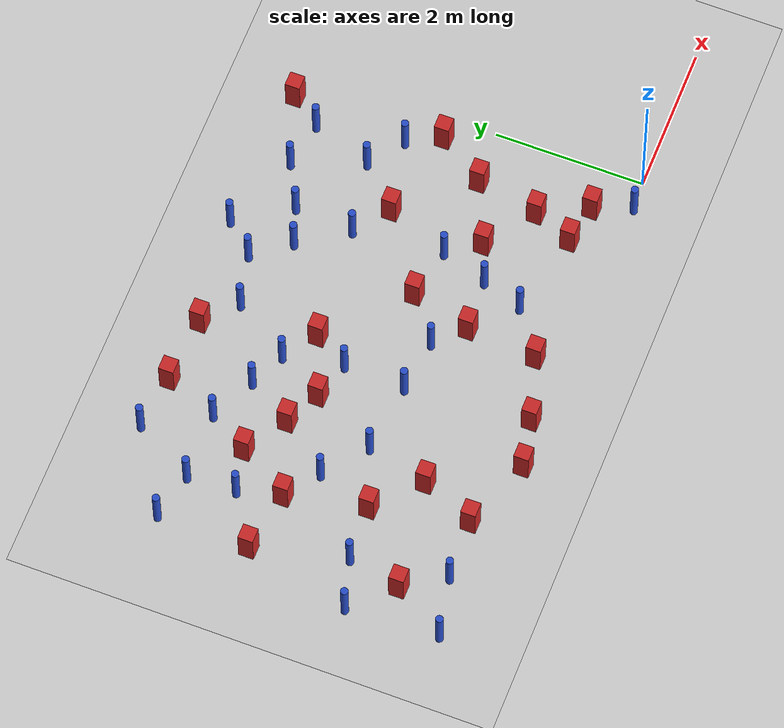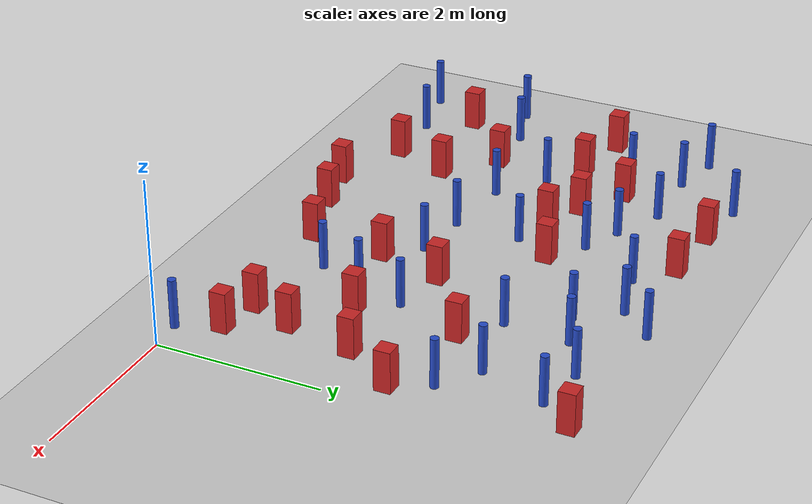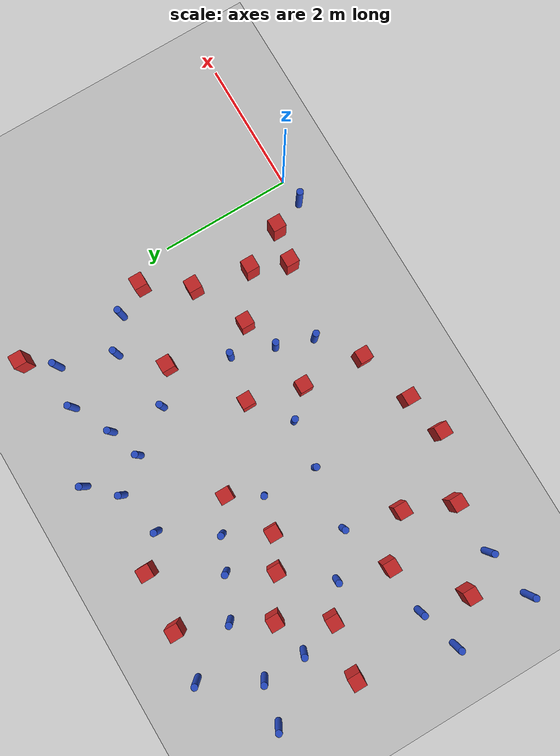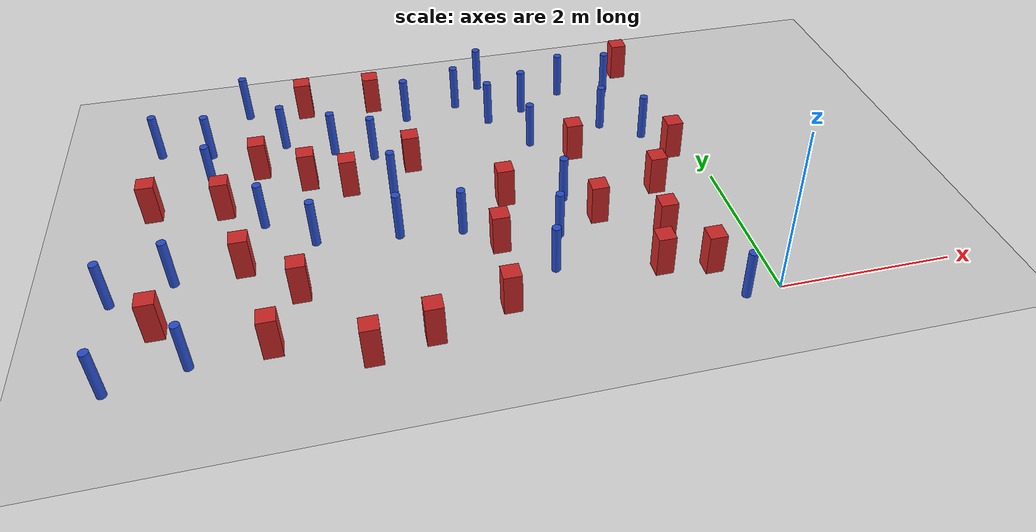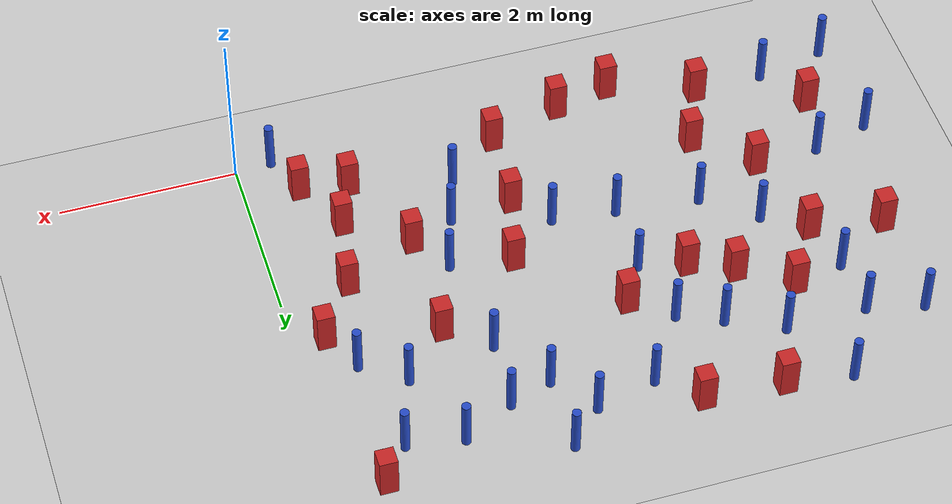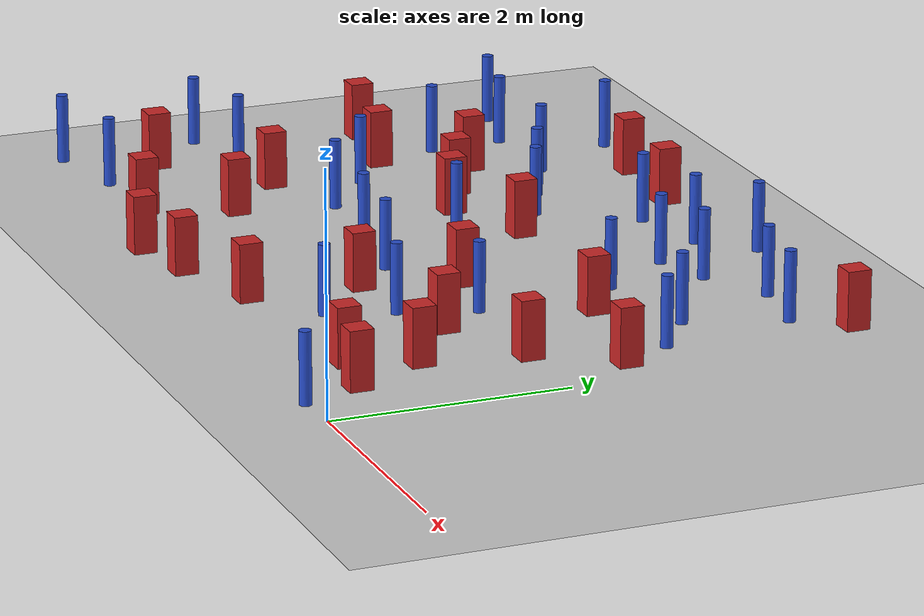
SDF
<sdf version="1.6">
 <world name="default">
  <model name="ground_plane">
   <static>1</static>
   <link name="link">
    <collision name="collision">
     <geometry><plane><normal>0 0 1</normal><size>100 100</size></plane></geometry>
     <surface><friction><ode><mu>100</mu><mu2>50</mu2></ode></friction></surface>
    </collision>
    <visual name="visual">
     <cast_shadows>0</cast_shadows>
     <geometry><plane><normal>0 0 1</normal><size>100 100</size></plane></geometry>
     <material>
      <ambient>1.0 1.0 1.0 1.0</ambient>
      <diffuse>0.8 0.8 0.8 1.0</diffuse>
      <specular>0.01 0.01 0.01 1.000000</specular>
     </material>
    </visual>
   </link>
  </model>
  <model name="square_post_obstacle0">
   <static>true</static>
   <pose>-3.55596763186 3.06718040949 1.91545236811e-07 -7.35059704564e-06 1.12565212e-07 2.39332434364e-05</pose>
   <link name="link">
    <pose>0 0 0.25 0 -0 0</pose>
    <inertial>
     <mass>100</mass>
     <inertia>
      <ixx>0.166667</ixx>
      <ixy>0</ixy>
      <ixz>0</ixz>
      <iyy>0.166667</iyy>
      <iyz>0</iyz>
      <izz>0.166667</izz>
     </inertia>
    </inertial>
    <collision name="collision"><geometry><box><size>.2 .2 .5</size></box></geometry></collision>
    <visual name="visual">
     <geometry><box><size>.2 .2 .5</size></box></geometry>
     <material>
      <script><name>Gazebo/Red</name><uri>file://media/materials/scripts/gazebo.material</uri></script>
     </material>
    </visual>
   </link>
  </model>
  <model name="pole_obstacle5">
   <static>true</static>
   <pose>-2.81162982472 4.31498104708 7.38925637345e-09 -8.47170692798e-08 1.24976765033e-08 -1.74513093019e-07</pose>
   <link name="link">
    <pose>0 0 0.3 0 -0 0</pose>
    <inertial>
     <mass>1</mass>
     <inertia><ixx>0.145833</ixx><ixy>0</ixy><ixz>0</ixz><iyy>0.145833</iyy><iyz>0</iyz><izz>0.125</izz></inertia>
    </inertial>
    <collision name="collision">
     <geometry><cylinder><radius>0.05</radius><length>.6</length></cylinder></geometry>
    </collision>
    <visual name="visual">
     <geometry><cylinder><radius>0.05</radius><length>.6</length></cylinder></geometry>
     <material>
      <script><name>Gazebo/Blue</name><uri>file://media/materials/scripts/gazebo.material</uri></script>
     </material>
    </visual>
   </link>
  </model>
  <model name="square_post_obstacle12">
   <static>true</static>
   <pose>-3.90689282888 4.53653102175 1.91545236811e-07 -7.35059704564e-06 1.12565212e-07 2.39332434364e-05</pose>
   <link name="link">
    <pose>0 0 0.25 0 -0 0</pose>
    <inertial>
     <mass>100</mass>
     <inertia>
      <ixx>0.166667</ixx>
      <ixy>0</ixy>
      <ixz>0</ixz>
      <iyy>0.166667</iyy>
      <iyz>0</iyz>
      <izz>0.166667</izz>
     </inertia>
    </inertial>
    <collision name="collision"><geometry><box><size>.2 .2 .5</size></box></geometry></collision>
    <visual name="visual">
     <geometry><box><size>.2 .2 .5</size></box></geometry>
     <material>
      <script><name>Gazebo/Red</name><uri>file://media/materials/scripts/gazebo.material</uri></script>
     </material>
    </visual>
   </link>
  </model>
  <model name="square_post_obstacle18">
   <static>true</static>
   <pose>-0.758517951045 1.95636640092 1.91545236811e-07 -7.35059704564e-06 1.12565212e-07 2.39332434364e-05</pose>
   <link name="link">
    <pose>0 0 0.25 0 -0 0</pose>
    <inertial>
     <mass>100</mass>
     <inertia>
      <ixx>0.166667</ixx>
      <ixy>0</ixy>
      <ixz>0</ixz>
      <iyy>0.166667</iyy>
      <iyz>0</iyz>
      <izz>0.166667</izz>
     </inertia>
    </inertial>
    <collision name="collision"><geometry><box><size>.2 .2 .5</size></box></geometry></collision>
    <visual name="visual">
     <geometry><box><size>.2 .2 .5</size></box></geometry>
     <material>
      <script><name>Gazebo/Red</name><uri>file://media/materials/scripts/gazebo.material</uri></script>
     </material>
    </visual>
   </link>
  </model>
  <model name="pole_obstacle11">
   <static>true</static>
   <pose>-5.07678339914 3.88739832947 7.38925637345e-09 -8.47170692798e-08 1.24976764937e-08 -1.74513093023e-07</pose>
   <link name="link">
    <pose>0 0 0.3 0 -0 0</pose>
    <inertial>
     <mass>1</mass>
     <inertia><ixx>0.145833</ixx><ixy>0</ixy><ixz>0</ixz><iyy>0.145833</iyy><iyz>0</iyz><izz>0.125</izz></inertia>
    </inertial>
    <collision name="collision">
     <geometry><cylinder><radius>0.05</radius><length>.6</length></cylinder></geometry>
    </collision>
    <visual name="visual">
     <geometry><cylinder><radius>0.05</radius><length>.6</length></cylinder></geometry>
     <material>
      <script><name>Gazebo/Blue</name><uri>file://media/materials/scripts/gazebo.material</uri></script>
     </material>
    </visual>
   </link>
  </model>
  <model name="square_post_obstacle22">
   <static>true</static>
   <pose>-6.60821989965 2.79242806834 1.91545236811e-07 -7.35059704564e-06 1.12565212e-07 2.39332434364e-05</pose>
   <link name="link">
    <pose>0 0 0.25 0 -0 0</pose>
    <inertial>
     <mass>100</mass>
     <inertia>
      <ixx>0.166667</ixx>
      <ixy>0</ixy>
      <ixz>0</ixz>
      <iyy>0.166667</iyy>
      <iyz>0</iyz>
      <izz>0.166667</izz>
     </inertia>
    </inertial>
    <collision name="collision"><geometry><box><size>.2 .2 .5</size></box></geometry></collision>
    <visual name="visual">
     <geometry><box><size>.2 .2 .5</size></box></geometry>
     <material>
      <script><name>Gazebo/Red</name><uri>file://media/materials/scripts/gazebo.material</uri></script>
     </material>
    </visual>
   </link>
  </model>
  <model name="square_post_obstacle23">
   <static>true</static>
   <pose>-4.34009760006 2.75587607448 1.91545236811e-07 -7.35059704564e-06 1.12565212e-07 2.39332434364e-05</pose>
   <link name="link">
    <pose>0 0 0.25 0 -0 0</pose>
    <inertial>
     <mass>100</mass>
     <inertia>
      <ixx>0.166667</ixx>
      <ixy>0</ixy>
      <ixz>0</ixz>
      <iyy>0.166667</iyy>
      <iyz>0</iyz>
      <izz>0.166667</izz>
     </inertia>
    </inertial>
    <collision name="collision"><geometry><box><size>.2 .2 .5</size></box></geometry></collision>
    <visual name="visual">
     <geometry><box><size>.2 .2 .5</size></box></geometry>
     <material>
      <script><name>Gazebo/Red</name><uri>file://media/materials/scripts/gazebo.material</uri></script>
     </material>
    </visual>
   </link>
  </model>
  <model name="pole_obstacle18">
   <static>true</static>
   <pose>-4.47492820045 3.59620624699 7.38925637345e-09 -8.47170692798e-08 1.24976764937e-08 -1.74513093023e-07</pose>
   <link name="link">
    <pose>0 0 0.3 0 -0 0</pose>
    <inertial>
     <mass>1</mass>
     <inertia><ixx>0.145833</ixx><ixy>0</ixy><ixz>0</ixz><iyy>0.145833</iyy><iyz>0</iyz><izz>0.125</izz></inertia>
    </inertial>
    <collision name="collision">
     <geometry><cylinder><radius>0.05</radius><length>.6</length></cylinder></geometry>
    </collision>
    <visual name="visual">
     <geometry><cylinder><radius>0.05</radius><length>.6</length></cylinder></geometry>
     <material>
      <script><name>Gazebo/Blue</name><uri>file://media/materials/scripts/gazebo.material</uri></script>
     </material>
    </visual>
   </link>
  </model>
  <model name="square_post_obstacle29">
   <static>true</static>
   <pose>-6.44427850172 0.853628667313 1.91545236811e-07 -7.35059704564e-06 1.12565212e-07 2.39332434364e-05</pose>
   <link name="link">
    <pose>0 0 0.25 0 -0 0</pose>
    <inertial>
     <mass>100</mass>
     <inertia>
      <ixx>0.166667</ixx>
      <ixy>0</ixy>
      <ixz>0</ixz>
      <iyy>0.166667</iyy>
      <iyz>0</iyz>
      <izz>0.166667</izz>
     </inertia>
    </inertial>
    <collision name="collision"><geometry><box><size>.2 .2 .5</size></box></geometry></collision>
    <visual name="visual">
     <geometry><box><size>.2 .2 .5</size></box></geometry>
     <material>
      <script><name>Gazebo/Red</name><uri>file://media/materials/scripts/gazebo.material</uri></script>
     </material>
    </visual>
   </link>
  </model>
  <model name="square_post_obstacle46">
   <static>true</static>
   <pose>-5.28800763134 0.344674711629 1.91545236811e-07 -7.35059704564e-06 1.12565212e-07 2.39332434364e-05</pose>
   <link name="link">
    <pose>0 0 0.25 0 -0 0</pose>
    <inertial>
     <mass>100</mass>
     <inertia>
      <ixx>0.166667</ixx>
      <ixy>0</ixy>
      <ixz>0</ixz>
      <iyy>0.166667</iyy>
      <iyz>0</iyz>
      <izz>0.166667</izz>
     </inertia>
    </inertial>
    <collision name="collision"><geometry><box><size>.2 .2 .5</size></box></geometry></collision>
    <visual name="visual">
     <geometry><box><size>.2 .2 .5</size></box></geometry>
     <material>
      <script><name>Gazebo/Red</name><uri>file://media/materials/scripts/gazebo.material</uri></script>
     </material>
    </visual>
   </link>
  </model>
  <model name="pole_obstacle47">
   <static>true</static>
   <pose>-3.15005082877 1.69708760425 7.38925637345e-09 -8.471706928e-08 1.24976765152e-08 -1.74513093012e-07</pose>
   <link name="link">
    <pose>0 0 0.3 0 -0 0</pose>
    <inertial>
     <mass>1</mass>
     <inertia><ixx>0.145833</ixx><ixy>0</ixy><ixz>0</ixz><iyy>0.145833</iyy><iyz>0</iyz><izz>0.125</izz></inertia>
    </inertial>
    <collision name="collision">
     <geometry><cylinder><radius>0.05</radius><length>.6</length></cylinder></geometry>
    </collision>
    <visual name="visual">
     <geometry><cylinder><radius>0.05</radius><length>.6</length></cylinder></geometry>
     <material>
      <script><name>Gazebo/Blue</name><uri>file://media/materials/scripts/gazebo.material</uri></script>
     </material>
    </visual>
   </link>
  </model>
  <model name="pole_obstacle48">
   <static>true</static>
   <pose>-5.95341999926 3.22461504362 7.38925637345e-09 -8.47170692798e-08 1.24976764937e-08 -1.74513093023e-07</pose>
   <link name="link">
    <pose>0 0 0.3 0 -0 0</pose>
    <inertial>
     <mass>1</mass>
     <inertia><ixx>0.145833</ixx><ixy>0</ixy><ixz>0</ixz><iyy>0.145833</iyy><iyz>0</iyz><izz>0.125</izz></inertia>
    </inertial>
    <collision name="collision">
     <geometry><cylinder><radius>0.05</radius><length>.6</length></cylinder></geometry>
    </collision>
    <visual name="visual">
     <geometry><cylinder><radius>0.05</radius><length>.6</length></cylinder></geometry>
     <material>
      <script><name>Gazebo/Blue</name><uri>file://media/materials/scripts/gazebo.material</uri></script>
     </material>
    </visual>
   </link>
  </model>
  <model name="square_post_obstacle49">
   <static>true</static>
   <pose>-2.56799728184 2.14186176935 1.91545236811e-07 -7.35059704564e-06 1.12565212e-07 2.39332434364e-05</pose>
   <link name="link">
    <pose>0 0 0.25 0 -0 0</pose>
    <inertial>
     <mass>100</mass>
     <inertia>
      <ixx>0.166667</ixx>
      <ixy>0</ixy>
      <ixz>0</ixz>
      <iyy>0.166667</iyy>
      <iyz>0</iyz>
      <izz>0.166667</izz>
     </inertia>
    </inertial>
    <collision name="collision"><geometry><box><size>.2 .2 .5</size></box></geometry></collision>
    <visual name="visual">
     <geometry><box><size>.2 .2 .5</size></box></geometry>
     <material>
      <script><name>Gazebo/Red</name><uri>file://media/materials/scripts/gazebo.material</uri></script>
     </material>
    </visual>
   </link>
  </model>
  <model name="square_post_obstacle50">
   <static>true</static>
   <pose>-0.925901532335 1.11366459113 1.91545236811e-07 -7.35059704564e-06 1.12565212e-07 2.39332434364e-05</pose>
   <link name="link">
    <pose>0 0 0.25 0 -0 0</pose>
    <inertial>
     <mass>100</mass>
     <inertia>
      <ixx>0.166667</ixx>
      <ixy>0</ixy>
      <ixz>0</ixz>
      <iyy>0.166667</iyy>
      <iyz>0</iyz>
      <izz>0.166667</izz>
     </inertia>
    </inertial>
    <collision name="collision"><geometry><box><size>.2 .2 .5</size></box></geometry></collision>
    <visual name="visual">
     <geometry><box><size>.2 .2 .5</size></box></geometry>
     <material>
      <script><name>Gazebo/Red</name><uri>file://media/materials/scripts/gazebo.material</uri></script>
     </material>
    </visual>
   </link>
  </model>
  <model name="pole_obstacle60">
   <static>true</static>
   <pose>-5.35524571533 2.32616071133 7.38925637345e-09 -8.47170692798e-08 1.24976764937e-08 -1.74513093023e-07</pose>
   <link name="link">
    <pose>0 0 0.3 0 -0 0</pose>
    <inertial>
     <mass>1</mass>
     <inertia><ixx>0.145833</ixx><ixy>0</ixy><ixz>0</ixz><iyy>0.145833</iyy><iyz>0</iyz><izz>0.125</izz></inertia>
    </inertial>
    <collision name="collision">
     <geometry><cylinder><radius>0.05</radius><length>.6</length></cylinder></geometry>
    </collision>
    <visual name="visual">
     <geometry><cylinder><radius>0.05</radius><length>.6</length></cylinder></geometry>
     <material>
      <script><name>Gazebo/Blue</name><uri>file://media/materials/scripts/gazebo.material</uri></script>
     </material>
    </visual>
   </link>
  </model>
  <model name="pole_obstacle63">
   <static>true</static>
   <pose>-0.564774074201 3.04862464126 7.38925637345e-09 -8.47170692799e-08 1.2497676509e-08 -1.74513093016e-07</pose>
   <link name="link">
    <pose>0 0 0.3 0 -0 0</pose>
    <inertial>
     <mass>1</mass>
     <inertia><ixx>0.145833</ixx><ixy>0</ixy><ixz>0</ixz><iyy>0.145833</iyy><iyz>0</iyz><izz>0.125</izz></inertia>
    </inertial>
    <collision name="collision">
     <geometry><cylinder><radius>0.05</radius><length>.6</length></cylinder></geometry>
    </collision>
    <visual name="visual">
     <geometry><cylinder><radius>0.05</radius><length>.6</length></cylinder></geometry>
     <material>
      <script><name>Gazebo/Blue</name><uri>file://media/materials/scripts/gazebo.material</uri></script>
     </material>
    </visual>
   </link>
  </model>
  <model name="pole_obstacle67">
   <static>true</static>
   <pose>-2.01659629184 3.20612175568 7.38925637345e-09 -8.47170692793e-08 1.24976764444e-08 -1.74513093039e-07</pose>
   <link name="link">
    <pose>0 0 0.3 0 -0 0</pose>
    <inertial>
     <mass>1</mass>
     <inertia><ixx>0.145833</ixx><ixy>0</ixy><ixz>0</ixz><iyy>0.145833</iyy><iyz>0</iyz><izz>0.125</izz></inertia>
    </inertial>
    <collision name="collision">
     <geometry><cylinder><radius>0.05</radius><length>.6</length></cylinder></geometry>
    </collision>
    <visual name="visual">
     <geometry><cylinder><radius>0.05</radius><length>.6</length></cylinder></geometry>
     <material>
      <script><name>Gazebo/Blue</name><uri>file://media/materials/scripts/gazebo.material</uri></script>
     </material>
    </visual>
   </link>
  </model>
  <model name="square_post_obstacle75">
   <static>true</static>
   <pose>-3.6953844232 0.13644076517 1.91545236811e-07 -7.35059704564e-06 1.12565212e-07 2.39332434364e-05</pose>
   <link name="link">
    <pose>0 0 0.25 0 -0 0</pose>
    <inertial>
     <mass>100</mass>
     <inertia>
      <ixx>0.166667</ixx>
      <ixy>0</ixy>
      <ixz>0</ixz>
      <iyy>0.166667</iyy>
      <iyz>0</iyz>
      <izz>0.166667</izz>
     </inertia>
    </inertial>
    <collision name="collision"><geometry><box><size>.2 .2 .5</size></box></geometry></collision>
    <visual name="visual">
     <geometry><box><size>.2 .2 .5</size></box></geometry>
     <material>
      <script><name>Gazebo/Red</name><uri>file://media/materials/scripts/gazebo.material</uri></script>
     </material>
    </visual>
   </link>
  </model>
  <model name="pole_obstacle70">
   <static>true</static>
   <pose>-3.49727941909 4.14613733237 7.38925637345e-09 -8.47170692798e-08 1.24976765033e-08 -1.74513093019e-07</pose>
   <link name="link">
    <pose>0 0 0.3 0 -0 0</pose>
    <inertial>
     <mass>1</mass>
     <inertia><ixx>0.145833</ixx><ixy>0</ixy><ixz>0</ixz><iyy>0.145833</iyy><iyz>0</iyz><izz>0.125</izz></inertia>
    </inertial>
    <collision name="collision">
     <geometry><cylinder><radius>0.05</radius><length>.6</length></cylinder></geometry>
    </collision>
    <visual name="visual">
     <geometry><cylinder><radius>0.05</radius><length>.6</length></cylinder></geometry>
     <material>
      <script><name>Gazebo/Blue</name><uri>file://media/materials/scripts/gazebo.material</uri></script>
     </material>
    </visual>
   </link>
  </model>
  <model name="pole_obstacle73">
   <static>true</static>
   <pose>-6.10061672989 0.311041506609 7.38925637345e-09 -8.47170692798e-08 1.24976765003e-08 -1.7451309302e-07</pose>
   <link name="link">
    <pose>0 0 0.3 0 -0 0</pose>
    <inertial>
     <mass>1</mass>
     <inertia><ixx>0.145833</ixx><ixy>0</ixy><ixz>0</ixz><iyy>0.145833</iyy><iyz>0</iyz><izz>0.125</izz></inertia>
    </inertial>
    <collision name="collision">
     <geometry><cylinder><radius>0.05</radius><length>.6</length></cylinder></geometry>
    </collision>
    <visual name="visual">
     <geometry><cylinder><radius>0.05</radius><length>.6</length></cylinder></geometry>
     <material>
      <script><name>Gazebo/Blue</name><uri>file://media/materials/scripts/gazebo.material</uri></script>
     </material>
    </visual>
   </link>
  </model>
  <model name="pole_obstacle74">
   <static>true</static>
   <pose>-2.27200530907 0.830253684475 7.38925637345e-09 -8.471706928e-08 1.24976765177e-08 -1.74513093012e-07</pose>
   <link name="link">
    <pose>0 0 0.3 0 -0 0</pose>
    <inertial>
     <mass>1</mass>
     <inertia><ixx>0.145833</ixx><ixy>0</ixy><ixz>0</ixz><iyy>0.145833</iyy><iyz>0</iyz><izz>0.125</izz></inertia>
    </inertial>
    <collision name="collision">
     <geometry><cylinder><radius>0.05</radius><length>.6</length></cylinder></geometry>
    </collision>
    <visual name="visual">
     <geometry><cylinder><radius>0.05</radius><length>.6</length></cylinder></geometry>
     <material>
      <script><name>Gazebo/Blue</name><uri>file://media/materials/scripts/gazebo.material</uri></script>
     </material>
    </visual>
   </link>
  </model>
  <model name="pole_obstacle85">
   <static>true</static>
   <pose>-2.44279763016 3.83839844608 7.38925637345e-09 -8.47170692798e-08 1.24976764939e-08 -1.74513093025e-07</pose>
   <link name="link">
    <pose>0 0 0.3 0 -0 0</pose>
    <inertial>
     <mass>1</mass>
     <inertia><ixx>0.145833</ixx><ixy>0</ixy><ixz>0</ixz><iyy>0.145833</iyy><iyz>0</iyz><izz>0.125</izz></inertia>
    </inertial>
    <collision name="collision">
     <geometry><cylinder><radius>0.05</radius><length>.6</length></cylinder></geometry>
    </collision>
    <visual name="visual">
     <geometry><cylinder><radius>0.05</radius><length>.6</length></cylinder></geometry>
     <material>
      <script><name>Gazebo/Blue</name><uri>file://media/materials/scripts/gazebo.material</uri></script>
     </material>
    </visual>
   </link>
  </model>
  <model name="square_post_obstacle81">
   <static>true</static>
   <pose>-5.79362475213 2.65253738785 1.91545236811e-07 -7.35059704564e-06 1.12565212e-07 2.39332434364e-05</pose>
   <link name="link">
    <pose>0 0 0.25 0 -0 0</pose>
    <inertial>
     <mass>100</mass>
     <inertia>
      <ixx>0.166667</ixx>
      <ixy>0</ixy>
      <ixz>0</ixz>
      <iyy>0.166667</iyy>
      <iyz>0</iyz>
      <izz>0.166667</izz>
     </inertia>
    </inertial>
    <collision name="collision"><geometry><box><size>.2 .2 .5</size></box></geometry></collision>
    <visual name="visual">
     <geometry><box><size>.2 .2 .5</size></box></geometry>
     <material>
      <script><name>Gazebo/Red</name><uri>file://media/materials/scripts/gazebo.material</uri></script>
     </material>
    </visual>
   </link>
  </model>
  <model name="square_post_obstacle86">
   <static>true</static>
   <pose>-5.377571663 3.34564859481 1.91545236811e-07 -7.35059704564e-06 1.12565212e-07 2.39332434364e-05</pose>
   <link name="link">
    <pose>0 0 0.25 0 -0 0</pose>
    <inertial>
     <mass>100</mass>
     <inertia>
      <ixx>0.166667</ixx>
      <ixy>0</ixy>
      <ixz>0</ixz>
      <iyy>0.166667</iyy>
      <iyz>0</iyz>
      <izz>0.166667</izz>
     </inertia>
    </inertial>
    <collision name="collision"><geometry><box><size>.2 .2 .5</size></box></geometry></collision>
    <visual name="visual">
     <geometry><box><size>.2 .2 .5</size></box></geometry>
     <material>
      <script><name>Gazebo/Red</name><uri>file://media/materials/scripts/gazebo.material</uri></script>
     </material>
    </visual>
   </link>
  </model>
  <model name="pole_obstacle103">
   <static>true</static>
   <pose>-6.95344362558 1.37453726566 7.38925637345e-09 -8.471706928e-08 1.24976765134e-08 -1.74513093015e-07</pose>
   <link name="link">
    <pose>0 0 0.3 0 -0 0</pose>
    <inertial>
     <mass>1</mass>
     <inertia><ixx>0.145833</ixx><ixy>0</ixy><ixz>0</ixz><iyy>0.145833</iyy><iyz>0</iyz><izz>0.125</izz></inertia>
    </inertial>
    <collision name="collision">
     <geometry><cylinder><radius>0.05</radius><length>.6</length></cylinder></geometry>
    </collision>
    <visual name="visual">
     <geometry><cylinder><radius>0.05</radius><length>.6</length></cylinder></geometry>
     <material>
      <script><name>Gazebo/Blue</name><uri>file://media/materials/scripts/gazebo.material</uri></script>
     </material>
    </visual>
   </link>
  </model>
  <model name="pole_obstacle107">
   <static>true</static>
   <pose>-6.3106206043 1.55833704296 7.38925637345e-09 -8.471706928e-08 1.24976765134e-08 -1.74513093015e-07</pose>
   <link name="link">
    <pose>0 0 0.3 0 -0 0</pose>
    <inertial>
     <mass>1</mass>
     <inertia><ixx>0.145833</ixx><ixy>0</ixy><ixz>0</ixz><iyy>0.145833</iyy><iyz>0</iyz><izz>0.125</izz></inertia>
    </inertial>
    <collision name="collision">
     <geometry><cylinder><radius>0.05</radius><length>.6</length></cylinder></geometry>
    </collision>
    <visual name="visual">
     <geometry><cylinder><radius>0.05</radius><length>.6</length></cylinder></geometry>
     <material>
      <script><name>Gazebo/Blue</name><uri>file://media/materials/scripts/gazebo.material</uri></script>
     </material>
    </visual>
   </link>
  </model>
  <model name="square_post_obstacle98">
   <static>true</static>
   <pose>-4.79340291969 4.59178891312 1.91545236811e-07 -7.35059704564e-06 1.12565212e-07 2.39332434364e-05</pose>
   <link name="link">
    <pose>0 0 0.25 0 -0 0</pose>
    <inertial>
     <mass>100</mass>
     <inertia>
      <ixx>0.166667</ixx>
      <ixy>0</ixy>
      <ixz>0</ixz>
      <iyy>0.166667</iyy>
      <iyz>0</iyz>
      <izz>0.166667</izz>
     </inertia>
    </inertial>
    <collision name="collision"><geometry><box><size>.2 .2 .5</size></box></geometry></collision>
    <visual name="visual">
     <geometry><box><size>.2 .2 .5</size></box></geometry>
     <material>
      <script><name>Gazebo/Red</name><uri>file://media/materials/scripts/gazebo.material</uri></script>
     </material>
    </visual>
   </link>
  </model>
  <model name="pole_obstacle116">
   <static>true</static>
   <pose>-5.98675471906 3.87467879187 7.38925637345e-09 -8.47170692798e-08 1.24976764937e-08 -1.74513093023e-07</pose>
   <link name="link">
    <pose>0 0 0.3 0 -0 0</pose>
    <inertial>
     <mass>1</mass>
     <inertia><ixx>0.145833</ixx><ixy>0</ixy><ixz>0</ixz><iyy>0.145833</iyy><iyz>0</iyz><izz>0.125</izz></inertia>
    </inertial>
    <collision name="collision">
     <geometry><cylinder><radius>0.05</radius><length>.6</length></cylinder></geometry>
    </collision>
    <visual name="visual">
     <geometry><cylinder><radius>0.05</radius><length>.6</length></cylinder></geometry>
     <material>
      <script><name>Gazebo/Blue</name><uri>file://media/materials/scripts/gazebo.material</uri></script>
     </material>
    </visual>
   </link>
  </model>
  <model name="square_post_obstacle106">
   <static>true</static>
   <pose>-2.86037182408 0.394003439373 1.91545236811e-07 -7.35059704564e-06 1.12565212e-07 2.39332434364e-05</pose>
   <link name="link">
    <pose>0 0 0.25 0 -0 0</pose>
    <inertial>
     <mass>100</mass>
     <inertia>
      <ixx>0.166667</ixx>
      <ixy>0</ixy>
      <ixz>0</ixz>
      <iyy>0.166667</iyy>
      <iyz>0</iyz>
      <izz>0.166667</izz>
     </inertia>
    </inertial>
    <collision name="collision"><geometry><box><size>.2 .2 .5</size></box></geometry></collision>
    <visual name="visual">
     <geometry><box><size>.2 .2 .5</size></box></geometry>
     <material>
      <script><name>Gazebo/Red</name><uri>file://media/materials/scripts/gazebo.material</uri></script>
     </material>
    </visual>
   </link>
  </model>
  <model name="pole_obstacle128">
   <static>true</static>
   <pose>-6.88198985439 0.14702315174 7.38925637345e-09 -8.47170692801e-08 1.24976765186e-08 -1.74513093012e-07</pose>
   <link name="link">
    <pose>0 0 0.3 0 -0 0</pose>
    <inertial>
     <mass>1</mass>
     <inertia><ixx>0.145833</ixx><ixy>0</ixy><ixz>0</ixz><iyy>0.145833</iyy><iyz>0</iyz><izz>0.125</izz></inertia>
    </inertial>
    <collision name="collision">
     <geometry><cylinder><radius>0.05</radius><length>.6</length></cylinder></geometry>
    </collision>
    <visual name="visual">
     <geometry><cylinder><radius>0.05</radius><length>.6</length></cylinder></geometry>
     <material>
      <script><name>Gazebo/Blue</name><uri>file://media/materials/scripts/gazebo.material</uri></script>
     </material>
    </visual>
   </link>
  </model>
  <model name="pole_obstacle133">
   <static>true</static>
   <pose>-3.86391880614 1.78224925268 7.38925637345e-09 -8.471706928e-08 1.24976765152e-08 -1.74513093012e-07</pose>
   <link name="link">
    <pose>0 0 0.3 0 -0 0</pose>
    <inertial>
     <mass>1</mass>
     <inertia><ixx>0.145833</ixx><ixy>0</ixy><ixz>0</ixz><iyy>0.145833</iyy><iyz>0</iyz><izz>0.125</izz></inertia>
    </inertial>
    <collision name="collision">
     <geometry><cylinder><radius>0.05</radius><length>.6</length></cylinder></geometry>
    </collision>
    <visual name="visual">
     <geometry><cylinder><radius>0.05</radius><length>.6</length></cylinder></geometry>
     <material>
      <script><name>Gazebo/Blue</name><uri>file://media/materials/scripts/gazebo.material</uri></script>
     </material>
    </visual>
   </link>
  </model>
  <model name="pole_obstacle135">
   <static>true</static>
   <pose>-5.53117533511 4.68436350876 7.38925637345e-09 -8.47170692796e-08 1.24976764786e-08 -1.74513093032e-07</pose>
   <link name="link">
    <pose>0 0 0.3 0 -0 0</pose>
    <inertial>
     <mass>1</mass>
     <inertia><ixx>0.145833</ixx><ixy>0</ixy><ixz>0</ixz><iyy>0.145833</iyy><iyz>0</iyz><izz>0.125</izz></inertia>
    </inertial>
    <collision name="collision">
     <geometry><cylinder><radius>0.05</radius><length>.6</length></cylinder></geometry>
    </collision>
    <visual name="visual">
     <geometry><cylinder><radius>0.05</radius><length>.6</length></cylinder></geometry>
     <material>
      <script><name>Gazebo/Blue</name><uri>file://media/materials/scripts/gazebo.material</uri></script>
     </material>
    </visual>
   </link>
  </model>
  <model name="pole_obstacle138">
   <static>true</static>
   <pose>-6.61017582195 4.01897107941 7.38925637345e-09 -8.47170692797e-08 1.24976764805e-08 -1.74513093031e-07</pose>
   <link name="link">
    <pose>0 0 0.3 0 -0 0</pose>
    <inertial>
     <mass>1</mass>
     <inertia><ixx>0.145833</ixx><ixy>0</ixy><ixz>0</ixz><iyy>0.145833</iyy><iyz>0</iyz><izz>0.125</izz></inertia>
    </inertial>
    <collision name="collision">
     <geometry><cylinder><radius>0.05</radius><length>.6</length></cylinder></geometry>
    </collision>
    <visual name="visual">
     <geometry><cylinder><radius>0.05</radius><length>.6</length></cylinder></geometry>
     <material>
      <script><name>Gazebo/Blue</name><uri>file://media/materials/scripts/gazebo.material</uri></script>
     </material>
    </visual>
   </link>
  </model>
  <model name="square_post_obstacle120">
   <static>true</static>
   <pose>-5.56651192053 1.59388773843 1.91545236811e-07 -7.35059704564e-06 1.12565212e-07 2.39332434364e-05</pose>
   <link name="link">
    <pose>0 0 0.25 0 -0 0</pose>
    <inertial>
     <mass>100</mass>
     <inertia>
      <ixx>0.166667</ixx>
      <ixy>0</ixy>
      <ixz>0</ixz>
      <iyy>0.166667</iyy>
      <iyz>0</iyz>
      <izz>0.166667</izz>
     </inertia>
    </inertial>
    <collision name="collision"><geometry><box><size>.2 .2 .5</size></box></geometry></collision>
    <visual name="visual">
     <geometry><box><size>.2 .2 .5</size></box></geometry>
     <material>
      <script><name>Gazebo/Red</name><uri>file://media/materials/scripts/gazebo.material</uri></script>
     </material>
    </visual>
   </link>
  </model>
  <model name="square_post_obstacle130">
   <static>true</static>
   <pose>-4.98631432918 1.05859720573 1.91545236811e-07 -7.35059704564e-06 1.12565212e-07 2.39332434364e-05</pose>
   <link name="link">
    <pose>0 0 0.25 0 -0 0</pose>
    <inertial>
     <mass>100</mass>
     <inertia>
      <ixx>0.166667</ixx>
      <ixy>0</ixy>
      <ixz>0</ixz>
      <iyy>0.166667</iyy>
      <iyz>0</iyz>
      <izz>0.166667</izz>
     </inertia>
    </inertial>
    <collision name="collision"><geometry><box><size>.2 .2 .5</size></box></geometry></collision>
    <visual name="visual">
     <geometry><box><size>.2 .2 .5</size></box></geometry>
     <material>
      <script><name>Gazebo/Red</name><uri>file://media/materials/scripts/gazebo.material</uri></script>
     </material>
    </visual>
   </link>
  </model>
  <model name="square_post_obstacle138">
   <static>true</static>
   <pose>-1.54746886161 2.85332253684 1.91545236811e-07 -7.35059704564e-06 1.12565212e-07 2.39332434364e-05</pose>
   <link name="link">
    <pose>0 0 0.25 0 -0 0</pose>
    <inertial>
     <mass>100</mass>
     <inertia>
      <ixx>0.166667</ixx>
      <ixy>0</ixy>
      <ixz>0</ixz>
      <iyy>0.166667</iyy>
      <iyz>0</iyz>
      <izz>0.166667</izz>
     </inertia>
    </inertial>
    <collision name="collision"><geometry><box><size>.2 .2 .5</size></box></geometry></collision>
    <visual name="visual">
     <geometry><box><size>.2 .2 .5</size></box></geometry>
     <material>
      <script><name>Gazebo/Red</name><uri>file://media/materials/scripts/gazebo.material</uri></script>
     </material>
    </visual>
   </link>
  </model>
  <model name="square_post_obstacle143">
   <static>true</static>
   <pose>-0.60586261681 0.474877009281 1.91545236811e-07 -7.35059704564e-06 1.12565212e-07 2.39332434364e-05</pose>
   <link name="link">
    <pose>0 0 0.25 0 -0 0</pose>
    <inertial>
     <mass>100</mass>
     <inertia>
      <ixx>0.166667</ixx>
      <ixy>0</ixy>
      <ixz>0</ixz>
      <iyy>0.166667</iyy>
      <iyz>0</iyz>
      <izz>0.166667</izz>
     </inertia>
    </inertial>
    <collision name="collision"><geometry><box><size>.2 .2 .5</size></box></geometry></collision>
    <visual name="visual">
     <geometry><box><size>.2 .2 .5</size></box></geometry>
     <material>
      <script><name>Gazebo/Red</name><uri>file://media/materials/scripts/gazebo.material</uri></script>
     </material>
    </visual>
   </link>
  </model>
  <model name="pole_obstacle154">
   <static>true</static>
   <pose>-1.95924861889 4.00409734645 7.38925637345e-09 -8.47170692799e-08 1.24976765098e-08 -1.74513093014e-07</pose>
   <link name="link">
    <pose>0 0 0.3 0 -0 0</pose>
    <inertial>
     <mass>1</mass>
     <inertia><ixx>0.145833</ixx><ixy>0</ixy><ixz>0</ixz><iyy>0.145833</iyy><iyz>0</iyz><izz>0.125</izz></inertia>
    </inertial>
    <collision name="collision">
     <geometry><cylinder><radius>0.05</radius><length>.6</length></cylinder></geometry>
    </collision>
    <visual name="visual">
     <geometry><cylinder><radius>0.05</radius><length>.6</length></cylinder></geometry>
     <material>
      <script><name>Gazebo/Blue</name><uri>file://media/materials/scripts/gazebo.material</uri></script>
     </material>
    </visual>
   </link>
  </model>
  <model name="square_post_obstacle145">
   <static>true</static>
   <pose>-4.33193924105 0.00123349756782 1.91545236811e-07 -7.35059704564e-06 1.12565212e-07 2.39332434364e-05</pose>
   <link name="link">
    <pose>0 0 0.25 0 -0 0</pose>
    <inertial>
     <mass>100</mass>
     <inertia>
      <ixx>0.166667</ixx>
      <ixy>0</ixy>
      <ixz>0</ixz>
      <iyy>0.166667</iyy>
      <iyz>0</iyz>
      <izz>0.166667</izz>
     </inertia>
    </inertial>
    <collision name="collision"><geometry><box><size>.2 .2 .5</size></box></geometry></collision>
    <visual name="visual">
     <geometry><box><size>.2 .2 .5</size></box></geometry>
     <material>
      <script><name>Gazebo/Red</name><uri>file://media/materials/scripts/gazebo.material</uri></script>
     </material>
    </visual>
   </link>
  </model>
  <model name="square_post_obstacle147">
   <static>true</static>
   <pose>-0.439614003252 4.61031321817 1.91545236811e-07 -7.35059704564e-06 1.12565212e-07 2.39332434364e-05</pose>
   <link name="link">
    <pose>0 0 0.25 0 -0 0</pose>
    <inertial>
     <mass>100</mass>
     <inertia>
      <ixx>0.166667</ixx>
      <ixy>0</ixy>
      <ixz>0</ixz>
      <iyy>0.166667</iyy>
      <iyz>0</iyz>
      <izz>0.166667</izz>
     </inertia>
    </inertial>
    <collision name="collision"><geometry><box><size>.2 .2 .5</size></box></geometry></collision>
    <visual name="visual">
     <geometry><box><size>.2 .2 .5</size></box></geometry>
     <material>
      <script><name>Gazebo/Red</name><uri>file://media/materials/scripts/gazebo.material</uri></script>
     </material>
    </visual>
   </link>
  </model>
  <model name="pole_obstacle158">
   <static>true</static>
   <pose>-4.79618555621 1.88387338476 7.38925637345e-09 -8.471706928e-08 1.24976765134e-08 -1.74513093015e-07</pose>
   <link name="link">
    <pose>0 0 0.3 0 -0 0</pose>
    <inertial>
     <mass>1</mass>
     <inertia><ixx>0.145833</ixx><ixy>0</ixy><ixz>0</ixz><iyy>0.145833</iyy><iyz>0</iyz><izz>0.125</izz></inertia>
    </inertial>
    <collision name="collision">
     <geometry><cylinder><radius>0.05</radius><length>.6</length></cylinder></geometry>
    </collision>
    <visual name="visual">
     <geometry><cylinder><radius>0.05</radius><length>.6</length></cylinder></geometry>
     <material>
      <script><name>Gazebo/Blue</name><uri>file://media/materials/scripts/gazebo.material</uri></script>
     </material>
    </visual>
   </link>
  </model>
  <model name="pole_obstacle171">
   <static>true</static>
   <pose>-3.83761962409 2.60071446687 7.38925637345e-09 -8.47170692798e-08 1.24976764939e-08 -1.74513093025e-07</pose>
   <link name="link">
    <pose>0 0 0.3 0 -0 0</pose>
    <inertial>
     <mass>1</mass>
     <inertia><ixx>0.145833</ixx><ixy>0</ixy><ixz>0</ixz><iyy>0.145833</iyy><iyz>0</iyz><izz>0.125</izz></inertia>
    </inertial>
    <collision name="collision">
     <geometry><cylinder><radius>0.05</radius><length>.6</length></cylinder></geometry>
    </collision>
    <visual name="visual">
     <geometry><cylinder><radius>0.05</radius><length>.6</length></cylinder></geometry>
     <material>
      <script><name>Gazebo/Blue</name><uri>file://media/materials/scripts/gazebo.material</uri></script>
     </material>
    </visual>
   </link>
  </model>
  <model name="pole_obstacle179">
   <static>true</static>
   <pose>-0.752861372138 4.20013034615 7.38925637345e-09 -8.471706928e-08 1.24976765086e-08 -1.74513093015e-07</pose>
   <link name="link">
    <pose>0 0 0.3 0 -0 0</pose>
    <inertial>
     <mass>1</mass>
     <inertia><ixx>0.145833</ixx><ixy>0</ixy><ixz>0</ixz><iyy>0.145833</iyy><iyz>0</iyz><izz>0.125</izz></inertia>
    </inertial>
    <collision name="collision">
     <geometry><cylinder><radius>0.05</radius><length>.6</length></cylinder></geometry>
    </collision>
    <visual name="visual">
     <geometry><cylinder><radius>0.05</radius><length>.6</length></cylinder></geometry>
     <material>
      <script><name>Gazebo/Blue</name><uri>file://media/materials/scripts/gazebo.material</uri></script>
     </material>
    </visual>
   </link>
  </model>
  <model name="square_post_obstacle170">
   <static>true</static>
   <pose>-1.58500479805 1.58318524774 1.91545236811e-07 -7.35059704564e-06 1.12565212e-07 2.39332434364e-05</pose>
   <link name="link">
    <pose>0 0 0.25 0 -0 0</pose>
    <inertial>
     <mass>100</mass>
     <inertia>
      <ixx>0.166667</ixx>
      <ixy>0</ixy>
      <ixz>0</ixz>
      <iyy>0.166667</iyy>
      <iyz>0</iyz>
      <izz>0.166667</izz>
     </inertia>
    </inertial>
    <collision name="collision"><geometry><box><size>.2 .2 .5</size></box></geometry></collision>
    <visual name="visual">
     <geometry><box><size>.2 .2 .5</size></box></geometry>
     <material>
      <script><name>Gazebo/Red</name><uri>file://media/materials/scripts/gazebo.material</uri></script>
     </material>
    </visual>
   </link>
  </model>
  <model name="pole_obstacle182">
   <static>true</static>
   <pose>-0.409306427342 -0.0254400602473 7.38925637345e-09 -8.47170692797e-08 1.2497676489e-08 -1.74513093026e-07</pose>
   <link name="link">
    <pose>0 0 0.3 0 -0 0</pose>
    <inertial>
     <mass>1</mass>
     <inertia><ixx>0.145833</ixx><ixy>0</ixy><ixz>0</ixz><iyy>0.145833</iyy><iyz>0</iyz><izz>0.125</izz></inertia>
    </inertial>
    <collision name="collision">
     <geometry><cylinder><radius>0.05</radius><length>.6</length></cylinder></geometry>
    </collision>
    <visual name="visual">
     <geometry><cylinder><radius>0.05</radius><length>.6</length></cylinder></geometry>
     <material>
      <script><name>Gazebo/Blue</name><uri>file://media/materials/scripts/gazebo.material</uri></script>
     </material>
    </visual>
   </link>
  </model>
  <model name="square_post_obstacle171">
   <static>true</static>
   <pose>-2.78708999601 1.333959769 1.91545236811e-07 -7.35059704564e-06 1.12565212e-07 2.39332434364e-05</pose>
   <link name="link">
    <pose>0 0 0.25 0 -0 0</pose>
    <inertial>
     <mass>100</mass>
     <inertia>
      <ixx>0.166667</ixx>
      <ixy>0</ixy>
      <ixz>0</ixz>
      <iyy>0.166667</iyy>
      <iyz>0</iyz>
      <izz>0.166667</izz>
     </inertia>
    </inertial>
    <collision name="collision"><geometry><box><size>.2 .2 .5</size></box></geometry></collision>
    <visual name="visual">
     <geometry><box><size>.2 .2 .5</size></box></geometry>
     <material>
      <script><name>Gazebo/Red</name><uri>file://media/materials/scripts/gazebo.material</uri></script>
     </material>
    </visual>
   </link>
  </model>
  <model name="pole_obstacle185">
   <static>true</static>
   <pose>-1.88718690313 2.0047730029 7.38925637345e-09 -8.47170692798e-08 1.2497676495e-08 -1.74513093023e-07</pose>
   <link name="link">
    <pose>0 0 0.3 0 -0 0</pose>
    <inertial>
     <mass>1</mass>
     <inertia><ixx>0.145833</ixx><ixy>0</ixy><ixz>0</ixz><iyy>0.145833</iyy><iyz>0</iyz><izz>0.125</izz></inertia>
    </inertial>
    <collision name="collision">
     <geometry><cylinder><radius>0.05</radius><length>.6</length></cylinder></geometry>
    </collision>
    <visual name="visual">
     <geometry><cylinder><radius>0.05</radius><length>.6</length></cylinder></geometry>
     <material>
      <script><name>Gazebo/Blue</name><uri>file://media/materials/scripts/gazebo.material</uri></script>
     </material>
    </visual>
   </link>
  </model>
  <model name="square_post_obstacle181">
   <static>true</static>
   <pose>-1.14207759291 0.577414735765 1.91545236811e-07 -7.35059704564e-06 1.12565212e-07 2.39332434364e-05</pose>
   <link name="link">
    <pose>0 0 0.25 0 -0 0</pose>
    <inertial>
     <mass>100</mass>
     <inertia>
      <ixx>0.166667</ixx>
      <ixy>0</ixy>
      <ixz>0</ixz>
      <iyy>0.166667</iyy>
      <iyz>0</iyz>
      <izz>0.166667</izz>
     </inertia>
    </inertial>
    <collision name="collision"><geometry><box><size>.2 .2 .5</size></box></geometry></collision>
    <visual name="visual">
     <geometry><box><size>.2 .2 .5</size></box></geometry>
     <material>
      <script><name>Gazebo/Red</name><uri>file://media/materials/scripts/gazebo.material</uri></script>
     </material>
    </visual>
   </link>
  </model>
  <model name="square_post_obstacle197">
   <static>true</static>
   <pose>-4.8153889337 2.98696959798 1.91545236811e-07 -7.35059704564e-06 1.12565212e-07 2.39332434364e-05</pose>
   <link name="link">
    <pose>0 0 0.25 0 -0 0</pose>
    <inertial>
     <mass>100</mass>
     <inertia>
      <ixx>0.166667</ixx>
      <ixy>0</ixy>
      <ixz>0</ixz>
      <iyy>0.166667</iyy>
      <iyz>0</iyz>
      <izz>0.166667</izz>
     </inertia>
    </inertial>
    <collision name="collision"><geometry><box><size>.2 .2 .5</size></box></geometry></collision>
    <visual name="visual">
     <geometry><box><size>.2 .2 .5</size></box></geometry>
     <material>
      <script><name>Gazebo/Red</name><uri>file://media/materials/scripts/gazebo.material</uri></script>
     </material>
    </visual>
   </link>
  </model>
  <model name="square_post_obstacle202">
   <static>true</static>
   <pose>-0.327692922499 2.60350531171 1.91545236811e-07 -7.35059704564e-06 1.12565212e-07 2.39332434364e-05</pose>
   <link name="link">
    <pose>0 0 0.25 0 -0 0</pose>
    <inertial>
     <mass>100</mass>
     <inertia>
      <ixx>0.166667</ixx>
      <ixy>0</ixy>
      <ixz>0</ixz>
      <iyy>0.166667</iyy>
      <iyz>0</iyz>
      <izz>0.166667</izz>
     </inertia>
    </inertial>
    <collision name="collision"><geometry><box><size>.2 .2 .5</size></box></geometry></collision>
    <visual name="visual">
     <geometry><box><size>.2 .2 .5</size></box></geometry>
     <material>
      <script><name>Gazebo/Red</name><uri>file://media/materials/scripts/gazebo.material</uri></script>
     </material>
    </visual>
   </link>
  </model>
  <model name="pole_obstacle196">
   <static>true</static>
   <pose>-1.37932999043 4.30632002078 7.38925637345e-09 -8.47170692799e-08 1.24976765033e-08 -1.74513093018e-07</pose>
   <link name="link">
    <pose>0 0 0.3 0 -0 0</pose>
    <inertial>
     <mass>1</mass>
     <inertia><ixx>0.145833</ixx><ixy>0</ixy><ixz>0</ixz><iyy>0.145833</iyy><iyz>0</iyz><izz>0.125</izz></inertia>
    </inertial>
    <collision name="collision">
     <geometry><cylinder><radius>0.05</radius><length>.6</length></cylinder></geometry>
    </collision>
    <visual name="visual">
     <geometry><cylinder><radius>0.05</radius><length>.6</length></cylinder></geometry>
     <material>
      <script><name>Gazebo/Blue</name><uri>file://media/materials/scripts/gazebo.material</uri></script>
     </material>
    </visual>
   </link>
  </model>
  <model name="pole_obstacle199">
   <static>true</static>
   <pose>-2.09224999043 1.37870002078 7.38925637345e-09 -8.471706928e-08 1.24976765156e-08 -1.74513093012e-07</pose>
   <link name="link">
    <pose>0 0 0.3 0 -0 0</pose>
    <inertial>
     <mass>1</mass>
     <inertia><ixx>0.145833</ixx><ixy>0</ixy><ixz>0</ixz><iyy>0.145833</iyy><iyz>0</iyz><izz>0.125</izz></inertia>
    </inertial>
    <collision name="collision">
     <geometry><cylinder><radius>0.05</radius><length>.6</length></cylinder></geometry>
    </collision>
    <visual name="visual">
     <geometry><cylinder><radius>0.05</radius><length>.6</length></cylinder></geometry>
     <material>
      <script><name>Gazebo/Blue</name><uri>file://media/materials/scripts/gazebo.material</uri></script>
     </material>
    </visual>
   </link>
  </model>
  <model name="pole_obstacle200">
   <static>true</static>
   <pose>-2.43306999043 4.71418002078 7.38925637345e-09 -8.47170692798e-08 1.24976765033e-08 -1.74513093019e-07</pose>
   <link name="link">
    <pose>0 0 0.3 0 -0 0</pose>
    <inertial>
     <mass>1</mass>
     <inertia><ixx>0.145833</ixx><ixy>0</ixy><ixz>0</ixz><iyy>0.145833</iyy><iyz>0</iyz><izz>0.125</izz></inertia>
    </inertial>
    <collision name="collision">
     <geometry><cylinder><radius>0.05</radius><length>.6</length></cylinder></geometry>
    </collision>
    <visual name="visual">
     <geometry><cylinder><radius>0.05</radius><length>.6</length></cylinder></geometry>
     <material>
      <script><name>Gazebo/Blue</name><uri>file://media/materials/scripts/gazebo.material</uri></script>
     </material>
    </visual>
   </link>
  </model>
  <model name="pole_obstacle219">
   <static>true</static>
   <pose>-3.99835999043 3.38006002078 7.38925637345e-09 -8.47170692794e-08 1.24976764504e-08 -1.74513093036e-07</pose>
   <link name="link">
    <pose>0 0 0.3 0 -0 0</pose>
    <inertial>
     <mass>1</mass>
     <inertia><ixx>0.145833</ixx><ixy>0</ixy><ixz>0</ixz><iyy>0.145833</iyy><iyz>0</iyz><izz>0.125</izz></inertia>
    </inertial>
    <collision name="collision">
     <geometry><cylinder><radius>0.05</radius><length>.6</length></cylinder></geometry>
    </collision>
    <visual name="visual">
     <geometry><cylinder><radius>0.05</radius><length>.6</length></cylinder></geometry>
     <material>
      <script><name>Gazebo/Blue</name><uri>file://media/materials/scripts/gazebo.material</uri></script>
     </material>
    </visual>
   </link>
  </model>
  <model name="pole_obstacle222">
   <static>true</static>
   <pose>-1.03015999043 3.38910002078 7.38925637345e-09 -8.47170692799e-08 1.24976765076e-08 -1.74513093016e-07</pose>
   <link name="link">
    <pose>0 0 0.3 0 -0 0</pose>
    <inertial>
     <mass>1</mass>
     <inertia><ixx>0.145833</ixx><ixy>0</ixy><ixz>0</ixz><iyy>0.145833</iyy><iyz>0</iyz><izz>0.125</izz></inertia>
    </inertial>
    <collision name="collision">
     <geometry><cylinder><radius>0.05</radius><length>.6</length></cylinder></geometry>
    </collision>
    <visual name="visual">
     <geometry><cylinder><radius>0.05</radius><length>.6</length></cylinder></geometry>
     <material>
      <script><name>Gazebo/Blue</name><uri>file://media/materials/scripts/gazebo.material</uri></script>
     </material>
    </visual>
   </link>
  </model>
 </world>
</sdf>
